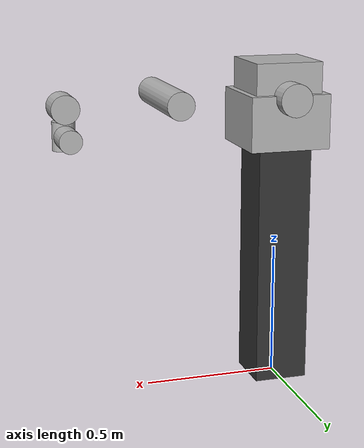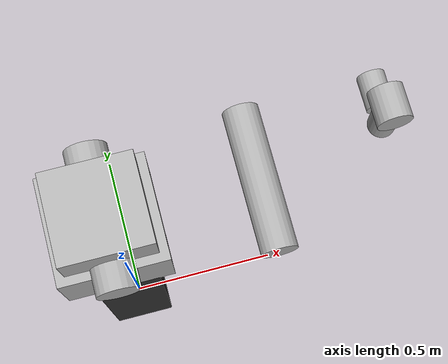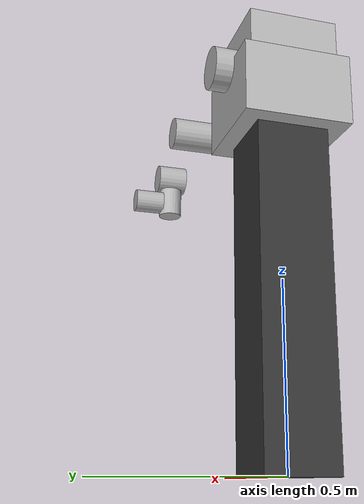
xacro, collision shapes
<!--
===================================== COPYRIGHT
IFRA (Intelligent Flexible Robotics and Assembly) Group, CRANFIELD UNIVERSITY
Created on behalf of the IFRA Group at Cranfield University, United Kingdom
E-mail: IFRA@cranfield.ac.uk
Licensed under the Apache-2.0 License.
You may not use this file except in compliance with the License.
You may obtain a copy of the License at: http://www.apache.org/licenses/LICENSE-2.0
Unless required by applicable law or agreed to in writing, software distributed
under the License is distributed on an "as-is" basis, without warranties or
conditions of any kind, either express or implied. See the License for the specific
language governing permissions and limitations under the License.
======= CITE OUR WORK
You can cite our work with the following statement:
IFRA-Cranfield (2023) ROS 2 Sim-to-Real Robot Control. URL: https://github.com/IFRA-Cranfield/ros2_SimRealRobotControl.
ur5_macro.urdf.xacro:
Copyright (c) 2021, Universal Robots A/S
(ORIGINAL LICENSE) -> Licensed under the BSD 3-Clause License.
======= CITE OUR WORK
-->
<?xml version="1.0" ?>

<robot name="ur5" xmlns:xacro="http://ros.org/wiki/xacro">

  <!-- PASS ARGUMENTS: -->
  <xacro:arg name="bringup" default="false"/>
  <xacro:property name="bringup" value="$(arg bringup)"/>
  <xacro:arg name="hmi" default="false"/>
  <xacro:property name="hmi" value="$(arg hmi)"/>
  <xacro:arg name="robot_ip" default="0.0.0.0"/>
  <xacro:property name="robot_ip" value="$(arg robot_ip)"/>

  <xacro:arg name="EE" default="false"/>
  <xacro:property name="EE" value="$(arg EE)"/>
  <xacro:arg name="EE_name" default="none"/>
  <xacro:property name="EE_name" value="$(arg EE_name)"/>

  <!-- UR5 Control ARGUMENTS -->
  <xacro:arg name="script_filename" default="none"/>
  <xacro:property name="script_filename" value="$(arg script_filename)"/>
  <xacro:arg name="input_recipe_filename" default="none"/>
  <xacro:property name="input_recipe_filename" value="$(arg input_recipe_filename)"/>
  <xacro:arg name="output_recipe_filename" default="none"/>
  <xacro:property name="output_recipe_filename" value="$(arg output_recipe_filename)"/>

  <!-- Include XACRO-MACRO file of the UR5: -->
  <xacro:include filename="$(find ros2srrc_robots)/ur5/urdf/ur5_macro.urdf.xacro"/>
  <xacro:ur5
    bringup="${bringup}"
    robot_ip="${robot_ip}"
    EE="${EE}"
    EE_name="${EE_name}"

    script_filename="${script_filename}"
    input_recipe_filename="${input_recipe_filename}"
    output_recipe_filename="${output_recipe_filename}"
  />

  <!-- Load ROS 2 Gazebo Plugin -->
  <xacro:unless value="${bringup}">

    <gazebo>
      <plugin filename="libgazebo_ros2_control.so" name="gazebo_ros2_control">
        <robot_sim_type>gazebo_ros2_control/GazeboSystem</robot_sim_type>

        <!-- UR5 Controller -->
        <parameters>$(find ros2srrc_robots)/ur5/config/controller.yaml</parameters>

      </plugin>
    </gazebo>

  </xacro:unless>

  <!-- World: LINK -->
  <link name="world"/>

  <!-- Robot Stand: LINK -->
  <link name='robot_stand'>
    <inertial>
      <origin xyz="0 0 0" rpy="0 0 0"/>
      <mass value="100"/>
      <inertia ixx="0.01"  ixy="0"  ixz="0" iyy="0.01" iyz="0" izz="0.01" />
    </inertial>
    <collision name='collision'>
      <origin xyz="0 0 0" rpy=" 0 0 0"/>
      <geometry>
        <box size = "0.2 0.2 1.0"/>
      </geometry>
    </collision>
    <visual name='chassis_visual'>
      <origin xyz="0 0 0" rpy=" 0 0 0"/>
      <geometry>
        <box size = "0.2 0.2 1.0"/>
      </geometry>
      <material name="stand_grey">
        <color rgba="0.2 0.2 0.2 1.0"/>
      </material>
    </visual>
  </link>

  <!-- Robot Stand: FIXED JOINT -->
  <joint name="world_joint" type="fixed">
    <parent link= "world" />
    <child link = "robot_stand" />
    <origin xyz="0.0 0.0 0.5" rpy="0.0 0.0 0.0" />
  </joint>

  <!-- Robot Stand: Robot+Stand JOINT -->
  <joint name="stand_joint" type="fixed">
    <parent link= "robot_stand" />
    <child link = "base_link" />
    <origin xyz="0.0 0.0 0.501" rpy="0.0 0.0 0.0" />
  </joint>

  <!-- ros2srrc_HMI CAMERA -->
  <xacro:if value="${hmi}">
    <xacro:include filename="$(find ros2srrc_hmi)/urdf/hmicamera.urdf.xacro"/>
    <xacro:HMI_camera
      x="2.5"
      y="1.50"
      z="2.0"
      roll="0.0"
      pitch="0.35"
      yaw="-2.6"
    />
  </xacro:if>

</robot>

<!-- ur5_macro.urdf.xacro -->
<robot xmlns:xacro="http://ros.org/wiki/xacro">

  <!-- Include UR5 ROBOT SPECIFICATIONS: -->
  <xacro:include filename="$(find ros2srrc_robots)/ur5/urdf/ur5_common.xacro"/>

  <!-- XACRO-MACRO of UR5: -->
  <xacro:macro name="ur5" params="bringup robot_ip EE EE_name script_filename input_recipe_filename output_recipe_filename">

    <!-- LOAD UR5-Common: -->
    <xacro:ur5_common/>

    <!-- UR5 TRANSMISSION: -->
    <xacro:unless value="${bringup}">
      <xacro:include filename="$(find ros2srrc_robots)/ur5/urdf/ur5_transmission.xacro" />
      <xacro:ur5_transmission />
    </xacro:unless>

    <!-- UR5 GAZEBO - ROS2_CONTROL: -->
    <xacro:include filename="$(find ros2srrc_robots)/ur5/urdf/ur5_ros2control.xacro" />
    <xacro:ur5_ros2control
      bringup="${bringup}"
      robot_ip="${robot_ip}"
      EE="${EE}"
      EE_name="${EE_name}"

      script_filename="${script_filename}"
      input_recipe_filename="${input_recipe_filename}"
      output_recipe_filename="${output_recipe_filename}"
    />

    <!-- ***** UR5 ROBOT .urdf SERIAL CHAIN ***** -->

    <!-- Links: -->
    <link name="base_link"/>
    <link name="base_link_inertia">
      <visual>
        <origin xyz="0 0 0" rpy="0 0 ${pi}"/>
        <geometry>
          <mesh filename="file://$(find ros2srrc_robots)/ur5/meshes/visual/base.dae"/>
        </geometry>
        <material name="LightGrey">
          <color rgba="0.7 0.7 0.7 1.0"/>
        </material>
      </visual>
      <collision>
        <origin xyz="0 0 0" rpy="0 0 ${pi}"/>
        <geometry>
          <box size="0.3 0.3 0.2"/>
        </geometry>
      </collision>
      <xacro:cylinder_inertial radius="${base_inertia_radius}" length="${base_inertia_length}" mass="${base_mass}">
        <origin xyz="0 0 0" rpy="0 0 0" />
      </xacro:cylinder_inertial>
    </link>
    <link name="shoulder_link">
      <visual>
        <origin xyz="0 0 0" rpy="0 0 ${pi}"/>
        <geometry>
          <mesh filename="file://$(find ros2srrc_robots)/ur5/meshes/visual/shoulder.dae"/>
        </geometry>
        <material name="LightGrey">
          <color rgba="0.7 0.7 0.7 1.0"/>
        </material>
      </visual>
      <collision>
        <origin xyz="0 0 0" rpy="0 0 ${pi}"/>
        <geometry>
          <box size="0.25 0.25 0.25"/>
        </geometry>
      </collision>
      <xacro:cylinder_inertial radius="${shoulder_inertia_radius}" length="${shoulder_inertia_length}" mass="${shoulder_mass}">
        <origin xyz="0 0 0" rpy="0 0 0" />
      </xacro:cylinder_inertial>
    </link>
    <link name="upper_arm_link">
      <visual>
        <origin xyz="0 0 ${shoulder_offset}" rpy="${pi/2} 0 ${-pi/2}"/>
        <geometry>
          <mesh filename="file://$(find ros2srrc_robots)/ur5/meshes/visual/upperarm.dae"/>
        </geometry>
        <material name="LightGrey">
          <color rgba="0.7 0.7 0.7 1.0"/>
        </material>
      </visual>
      <collision>
        <origin xyz="0 0 0" rpy="0 0 0"/>
        <geometry>
          <cylinder radius="0.06" length="0.4"/>
        </geometry>
      </collision>
      <xacro:cylinder_inertial radius="${upperarm_inertia_radius}" length="${upperarm_inertia_length}" mass="${upper_arm_mass}">
        <origin xyz="${-0.5 * upperarm_inertia_length} 0.0 ${upper_arm_inertia_offset}" rpy="0 ${pi/2} 0" />
      </xacro:cylinder_inertial>
    </link>
    <link name="forearm_link">
      <visual>
        <origin xyz="0 0 ${elbow_offset}" rpy="${pi/2} 0 ${-pi/2}"/>
        <geometry>
          <mesh filename="file://$(find ros2srrc_robots)/ur5/meshes/visual/forearm.dae"/>
        </geometry>
        <material name="LightGrey">
          <color rgba="0.7 0.7 0.7 1.0"/>
        </material>
      </visual>
      <collision>
        <origin xyz="0 0 0" rpy="0 0 0"/>
        <geometry>
          <cylinder radius="0.05" length="0.4"/>
        </geometry>
      </collision>
      <xacro:cylinder_inertial radius="${forearm_inertia_radius}" length="${forearm_inertia_length}"  mass="${forearm_mass}">
        <origin xyz="${-0.5 * forearm_inertia_length} 0.0 ${elbow_offset}" rpy="0 ${pi/2} 0" />
      </xacro:cylinder_inertial>
    </link>
    <link name="wrist_1_link">
      <visual>
        <origin xyz="0 0 ${wrist_1_visual_offset}" rpy="${pi/2} 0 0"/>
        <geometry>
          <mesh filename="file://$(find ros2srrc_robots)/ur5/meshes/visual/wrist1.dae"/>
        </geometry>
        <material name="LightGrey">
          <color rgba="0.7 0.7 0.7 1.0"/>
        </material>
      </visual>
      <collision>
        <origin xyz="0 0 0" rpy="0 0 0"/>
        <geometry>
          <cylinder radius="0.05" length="0.1"/>
        </geometry>
      </collision>
      <xacro:cylinder_inertial radius="${wrist_1_inertia_radius}" length="${wrist_1_inertia_length}"  mass="${wrist_1_mass}">
        <origin xyz="0 0 0" rpy="0 0 0" />
      </xacro:cylinder_inertial>
    </link>
    <link name="wrist_2_link">
      <visual>
        <origin xyz="0 0 ${wrist_2_visual_offset}" rpy="0 0 0"/>
        <geometry>
          <mesh filename="file://$(find ros2srrc_robots)/ur5/meshes/visual/wrist2.dae"/>
        </geometry>
        <material name="LightGrey">
          <color rgba="0.7 0.7 0.7 1.0"/>
        </material>
      </visual>
      <collision>
        <origin xyz="0 0 0" rpy="0 0 0"/>
        <geometry>
          <cylinder radius="0.04" length="0.1"/>
        </geometry>
      </collision>
      <xacro:cylinder_inertial radius="${wrist_2_inertia_radius}" length="${wrist_2_inertia_length}"  mass="${wrist_2_mass}">
        <origin xyz="0 0 0" rpy="0 0 0" />
      </xacro:cylinder_inertial>
    </link>
    <link name="wrist_3_link">
      <visual>
        <origin xyz="0 0 ${wrist_3_visual_offset}" rpy="${pi/2} 0 0"/>
        <geometry>
          <mesh filename="file://$(find ros2srrc_robots)/ur5/meshes/visual/wrist3.dae"/>
        </geometry>
        <material name="LightGrey">
          <color rgba="0.7 0.7 0.7 1.0"/>
        </material>
      </visual>
      <collision>
        <origin xyz="0 0 0" rpy="0 0 0"/>
        <geometry>
          <cylinder radius="0.04" length="0.1"/>
        </geometry>
      </collision>
      <xacro:cylinder_inertial radius="${wrist_3_inertia_radius}" length="${wrist_3_inertia_length}"  mass="${wrist_3_mass}">
        <origin xyz="0.0 0.0 ${-0.5 * wrist_3_inertia_length}" rpy="0 0 0" />
      </xacro:cylinder_inertial>
    </link>

    <!-- Joints: -->
    <joint name="base_link-base_link_inertia" type="fixed">
      <parent link="base_link" />
      <child link="base_link_inertia" />
      <origin xyz="0 0 0" rpy="0 0 ${pi}" />
    </joint>
    <joint name="shoulder_pan_joint" type="revolute">
      <parent link="base_link_inertia" />
      <child link="shoulder_link" />
      <origin xyz="${shoulder_x} ${shoulder_y} ${shoulder_z}" rpy="${shoulder_roll} ${shoulder_pitch} ${shoulder_yaw}" />
      <axis xyz="0 0 1" />
      <limit lower="${shoulder_pan_lower_limit}" upper="${shoulder_pan_upper_limit}"
        effort="${shoulder_pan_effort_limit}" velocity="${shoulder_pan_velocity_limit}"/>
      <dynamics damping="1.0" friction="100.0"/>
    </joint>
    <joint name="shoulder_lift_joint" type="revolute">
      <parent link="shoulder_link" />
      <child link="upper_arm_link" />
      <origin xyz="${upper_arm_x} ${upper_arm_y} ${upper_arm_z}" rpy="${upper_arm_roll} ${upper_arm_pitch} ${upper_arm_yaw}" />
      <axis xyz="0 0 1" />
      <limit lower="${shoulder_lift_lower_limit}" upper="${shoulder_lift_upper_limit}"
        effort="${shoulder_lift_effort_limit}" velocity="${shoulder_lift_velocity_limit}"/>
      <dynamics damping="1.0" friction="100.0"/>
    </joint>
    <joint name="elbow_joint" type="revolute">
      <parent link="upper_arm_link" />
      <child link="forearm_link" />
      <origin xyz="${forearm_x} ${forearm_y} ${forearm_z}" rpy="${forearm_roll} ${forearm_pitch} ${forearm_yaw}" />
      <axis xyz="0 0 1" />
      <limit lower="${elbow_joint_lower_limit}" upper="${elbow_joint_upper_limit}"
        effort="${elbow_joint_effort_limit}" velocity="${elbow_joint_velocity_limit}"/>
      <dynamics damping="1.0" friction="100.0"/>
    </joint>
    <joint name="wrist_1_joint" type="revolute">
      <parent link="forearm_link" />
      <child link="wrist_1_link" />
      <origin xyz="${wrist_1_x} ${wrist_1_y} ${wrist_1_z}" rpy="${wrist_1_roll} ${wrist_1_pitch} ${wrist_1_yaw}" />
      <axis xyz="0 0 1" />
      <limit lower="${wrist_1_lower_limit}" upper="${wrist_1_upper_limit}"
        effort="${wrist_1_effort_limit}" velocity="${wrist_1_velocity_limit}"/>
      <dynamics damping="1.0" friction="10.0"/>
    </joint>
    <joint name="wrist_2_joint" type="revolute">
      <parent link="wrist_1_link" />
      <child link="wrist_2_link" />
      <origin xyz="${wrist_2_x} ${wrist_2_y} ${wrist_2_z}" rpy="${wrist_2_roll} ${wrist_2_pitch} ${wrist_2_yaw}" />
      <axis xyz="0 0 1" />
      <limit lower="${wrist_2_lower_limit}" upper="${wrist_2_upper_limit}"
             effort="${wrist_2_effort_limit}" velocity="${wrist_2_velocity_limit}"/>
      <dynamics damping="1.0" friction="10.0"/>
    </joint>
    <joint name="wrist_3_joint" type="revolute">
      <parent link="wrist_2_link" />
      <child link="wrist_3_link" />
      <origin xyz="${wrist_3_x} ${wrist_3_y} ${wrist_3_z}" rpy="${wrist_3_roll} ${wrist_3_pitch} ${wrist_3_yaw}" />
      <axis xyz="0 0 1" />
      <limit lower="${wrist_3_lower_limit}" upper="${wrist_3_upper_limit}"
             effort="${wrist_3_effort_limit}" velocity="${wrist_3_velocity_limit}"/>
      <dynamics damping="1.0" friction="1.0"/>
    </joint>

    <!-- ROS-Industrial 'base' frame - base_link to UR 'Base' Coordinates transform -->
    <link name="base"/>
    <joint name="base_link-base_fixed_joint" type="fixed">
      <origin xyz="0 0 0" rpy="0 0 ${pi}"/>
      <parent link="base_link"/>
      <child link="base"/>
    </joint>

    <!-- ROS-Industrial 'flange' frame - attachment point for EEF models -->
    <link name="flange" />
    <joint name="wrist_3-flange" type="fixed">
      <parent link="wrist_3_link" />
      <child link="flange" />
      <origin xyz="0 0 0" rpy="0 ${-pi/2.0} ${-pi/2.0}" />
    </joint>

    <!-- ROS-Industrial 'tool0' frame - all-zeros tool frame -->
    <link name="tool0"/>
    <joint name="flange-tool0" type="fixed">
      <!-- default toolframe - X+ left, Y+ up, Z+ front -->
      <origin xyz="0 0 0" rpy="${pi/2.0} 0 ${pi/2.0}"/>
      <parent link="flange"/>
      <child link="tool0"/>
    </joint>

  </xacro:macro>
</robot>

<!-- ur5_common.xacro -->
<robot xmlns:xacro="http://wiki.ros.org/xacro">

  <xacro:macro name="cylinder_inertial" params="radius length mass *origin">
    <inertial>
      <mass value="${mass}" />
      <xacro:insert_block name="origin" />
      <inertia ixx="${0.0833333 * mass * (3 * radius * radius + length * length)}" ixy="0.0" ixz="0.0"
        iyy="${0.0833333 * mass * (3 * radius * radius + length * length)}" iyz="0.0"
        izz="${0.5 * mass * radius * radius}" />
    </inertial>
  </xacro:macro>

  <xacro:macro name="ur5_common">

    <!-- ***** PARAMETER VALUES ***** -->

    <!-- DIEGO MARTIN: limites para eje Yamaha -->
    <xacro:property name="yamaha_joint_lower_limit" value="-0.9" scope="parent"/>
    <xacro:property name="yamaha_joint_upper_limit" value="0.9" scope="parent"/>
    <xacro:property name="yamaha_joint_velocity_limit" value="0.25" scope="parent"/>
    <xacro:property name="yamaha_joint_effort_limit" value="1.0" scope="parent"/>

    <!-- JOINTS LIMIT PARAMETERS* -->
    <xacro:property name="shoulder_pan_lower_limit" value="-6.2832" scope="parent"/>
    <xacro:property name="shoulder_pan_upper_limit" value="6.2832" scope="parent"/>
    <xacro:property name="shoulder_pan_velocity_limit" value="3.1416" scope="parent"/>
    <xacro:property name="shoulder_pan_effort_limit" value="150.0" scope="parent"/>

    <xacro:property name="shoulder_lift_lower_limit" value="-6.2832" scope="parent"/>
    <xacro:property name="shoulder_lift_upper_limit" value="6.2832" scope="parent"/>
    <xacro:property name="shoulder_lift_velocity_limit" value="3.1416" scope="parent"/>
    <xacro:property name="shoulder_lift_effort_limit" value="150.0" scope="parent"/>

    <xacro:property name="elbow_joint_lower_limit" value="-3.1416" scope="parent"/>
    <xacro:property name="elbow_joint_upper_limit" value="3.1416" scope="parent"/>
    <xacro:property name="elbow_joint_velocity_limit" value="3.1416" scope="parent"/>
    <xacro:property name="elbow_joint_effort_limit" value="150.0" scope="parent"/>

    <xacro:property name="wrist_1_lower_limit" value="-6.2832" scope="parent"/>
    <xacro:property name="wrist_1_upper_limit" value="6.2832" scope="parent"/>
    <xacro:property name="wrist_1_velocity_limit" value="3.1416" scope="parent"/>
    <xacro:property name="wrist_1_effort_limit" value="28.0" scope="parent"/>

    <xacro:property name="wrist_2_lower_limit" value="-6.2832" scope="parent"/>
    <xacro:property name="wrist_2_upper_limit" value="6.2832" scope="parent"/>
    <xacro:property name="wrist_2_velocity_limit" value="3.1416" scope="parent"/>
    <xacro:property name="wrist_2_effort_limit" value="28.0" scope="parent"/>

    <xacro:property name="wrist_3_lower_limit" value="-6.2832" scope="parent"/>
    <xacro:property name="wrist_3_upper_limit" value="6.2832" scope="parent"/>
    <xacro:property name="wrist_3_velocity_limit" value="3.1416" scope="parent"/>
    <xacro:property name="wrist_3_effort_limit" value="28.0" scope="parent"/>

    <!-- DH PARAMETERS* -->
    <xacro:property name="d1" value="0.089159" scope="parent"/>
    <xacro:property name="a2" value="-0.425" scope="parent"/>
    <xacro:property name="a3" value="-0.39225" scope="parent"/>
    <xacro:property name="d4" value="0.10915" scope="parent"/>
    <xacro:property name="d5" value="0.09465" scope="parent"/>
    <xacro:property name="d6" value="0.0823" scope="parent"/>

    <!-- kinematics* -->
    <xacro:property name="shoulder_x" value="0" scope="parent"/>
    <xacro:property name="shoulder_y" value="0" scope="parent"/>
    <xacro:property name="shoulder_z" value="0.089159" scope="parent"/>
    <xacro:property name="shoulder_roll" value="0" scope="parent"/>
    <xacro:property name="shoulder_pitch" value="0" scope="parent"/>
    <xacro:property name="shoulder_yaw" value="0" scope="parent"/>

    <xacro:property name="upper_arm_x" value="0" scope="parent"/>
    <xacro:property name="upper_arm_y" value="0" scope="parent"/>
    <xacro:property name="upper_arm_z" value="0" scope="parent"/>
    <xacro:property name="upper_arm_roll" value="1.570796327" scope="parent"/>
    <xacro:property name="upper_arm_pitch" value="0" scope="parent"/>
    <xacro:property name="upper_arm_yaw" value="0" scope="parent"/>

    <xacro:property name="forearm_x" value="-0.425" scope="parent"/>
    <xacro:property name="forearm_y" value="0" scope="parent"/>
    <xacro:property name="forearm_z" value="0" scope="parent"/>
    <xacro:property name="forearm_roll" value="0" scope="parent"/>
    <xacro:property name="forearm_pitch" value="0" scope="parent"/>
    <xacro:property name="forearm_yaw" value="0" scope="parent"/>

    <xacro:property name="wrist_1_x" value="-0.39225" scope="parent"/>
    <xacro:property name="wrist_1_y" value="0" scope="parent"/>
    <xacro:property name="wrist_1_z" value="0.10915" scope="parent"/>
    <xacro:property name="wrist_1_roll" value="0" scope="parent"/>
    <xacro:property name="wrist_1_pitch" value="0" scope="parent"/>
    <xacro:property name="wrist_1_yaw" value="0" scope="parent"/>

    <xacro:property name="wrist_2_x" value="0" scope="parent"/>
    <xacro:property name="wrist_2_y" value="-0.09465" scope="parent"/>
    <xacro:property name="wrist_2_z" value="-1.941303950897609e-11" scope="parent"/>
    <xacro:property name="wrist_2_roll" value="1.570796327" scope="parent"/>
    <xacro:property name="wrist_2_pitch" value="0" scope="parent"/>
    <xacro:property name="wrist_2_yaw" value="0" scope="parent"/>

    <xacro:property name="wrist_3_x" value="0" scope="parent"/>
    <xacro:property name="wrist_3_y" value="0.0823" scope="parent"/>
    <xacro:property name="wrist_3_z" value="-1.688001216681175e-11" scope="parent"/>
    <xacro:property name="wrist_3_roll" value="1.570796326589793" scope="parent"/>
    <xacro:property name="wrist_3_pitch" value="3.141592653589793" scope="parent"/>
    <xacro:property name="wrist_3_yaw" value="3.141592653589793" scope="parent"/>

    <!-- OFFSETS* -->
    <xacro:property name="shoulder_offset" value="0.13585" scope="parent"/>
    <xacro:property name="elbow_offset" value="0.0165" scope="parent"/>

    <!-- INERTIA PARAMETERS* -->
    <!-- mass* -->
    <xacro:property name="base_mass" value="4.0" scope="parent"/>
    <xacro:property name="shoulder_mass" value="3.7000" scope="parent"/>
    <xacro:property name="upper_arm_mass" value="8.3930" scope="parent"/>
    <xacro:property name="upper_arm_inertia_offset" value="0.136" scope="parent"/>
    <xacro:property name="forearm_mass" value="2.2750" scope="parent"/>
    <xacro:property name="wrist_1_mass" value="1.2190" scope="parent"/>
    <xacro:property name="wrist_2_mass" value="1.2190" scope="parent"/>
    <xacro:property name="wrist_3_mass" value="0.1879" scope="parent"/>
    <!-- link inertia parameter* -->
    <xacro:property name="base_inertia_radius" value="0.06" scope="parent"/>
    <xacro:property name="base_inertia_length" value="0.05" scope="parent"/>

    <xacro:property name="shoulder_inertia_radius" value="0.075" scope="parent"/>
    <xacro:property name="shoulder_inertia_length" value="0.178" scope="parent"/>

    <xacro:property name="upperarm_inertia_radius" value="0.06" scope="parent"/>
    <xacro:property name="upperarm_inertia_length" value="0.425" scope="parent"/>

    <xacro:property name="forearm_inertia_radius" value="0.06" scope="parent"/>
    <xacro:property name="forearm_inertia_length" value="0.39225" scope="parent"/>

    <xacro:property name="wrist_1_inertia_radius" value="0.06" scope="parent"/>
    <xacro:property name="wrist_1_inertia_length" value="0.12" scope="parent"/>

    <xacro:property name="wrist_2_inertia_radius" value="0.06" scope="parent"/>
    <xacro:property name="wrist_2_inertia_length" value="0.12" scope="parent"/>

    <xacro:property name="wrist_3_inertia_radius" value="0.0375" scope="parent"/>
    <xacro:property name="wrist_3_inertia_length" value="0.0305" scope="parent"/>
    <!-- center of mass* -->
    <xacro:property name="shoulder_cog" value="0.0 0.00193 -0.02561" scope="parent"/>
    <xacro:property name="upper_arm_cog" value="0.0 -0.024201 0.2125" scope="parent"/>
    <xacro:property name="forearm_cog" value="0.0 0.0265 0.11993" scope="parent"/>
    <xacro:property name="wrist_1_cog" value="0.0 0.110949 0.01634" scope="parent"/>
    <xacro:property name="wrist_2_cog" value="0.0 0.0018 0.11099" scope="parent"/>
    <xacro:property name="wrist_3_cog" value="0.0 0.001159 0.0" scope="parent"/>
    <!-- cylinder radius* -->
    <xacro:property name="shoulder_radius" value="0.06" scope="parent"/>
    <xacro:property name="upper_arm_radius" value="0.054" scope="parent"/>
    <xacro:property name="elbow_radius" value="0.06" scope="parent"/>
    <xacro:property name="forearm_radius" value="0.04" scope="parent"/>
    <xacro:property name="wrist_radius" value="0.045" scope="parent"/>

    <!-- VISUAL OFFSETS -->
    <xacro:property name="wrist_1_visual_offset" value="-0.093" scope="parent"/>
    <xacro:property name="wrist_2_visual_offset" value="-0.095" scope="parent"/>
    <xacro:property name="wrist_3_visual_offset" value="-0.0818" scope="parent"/>

    <!-- KINEMATICS HASH* -->
    <xacro:property name="kinematics_hash" value="calib_209549117540498681" scope="parent"/>
  </xacro:macro>
</robot>
